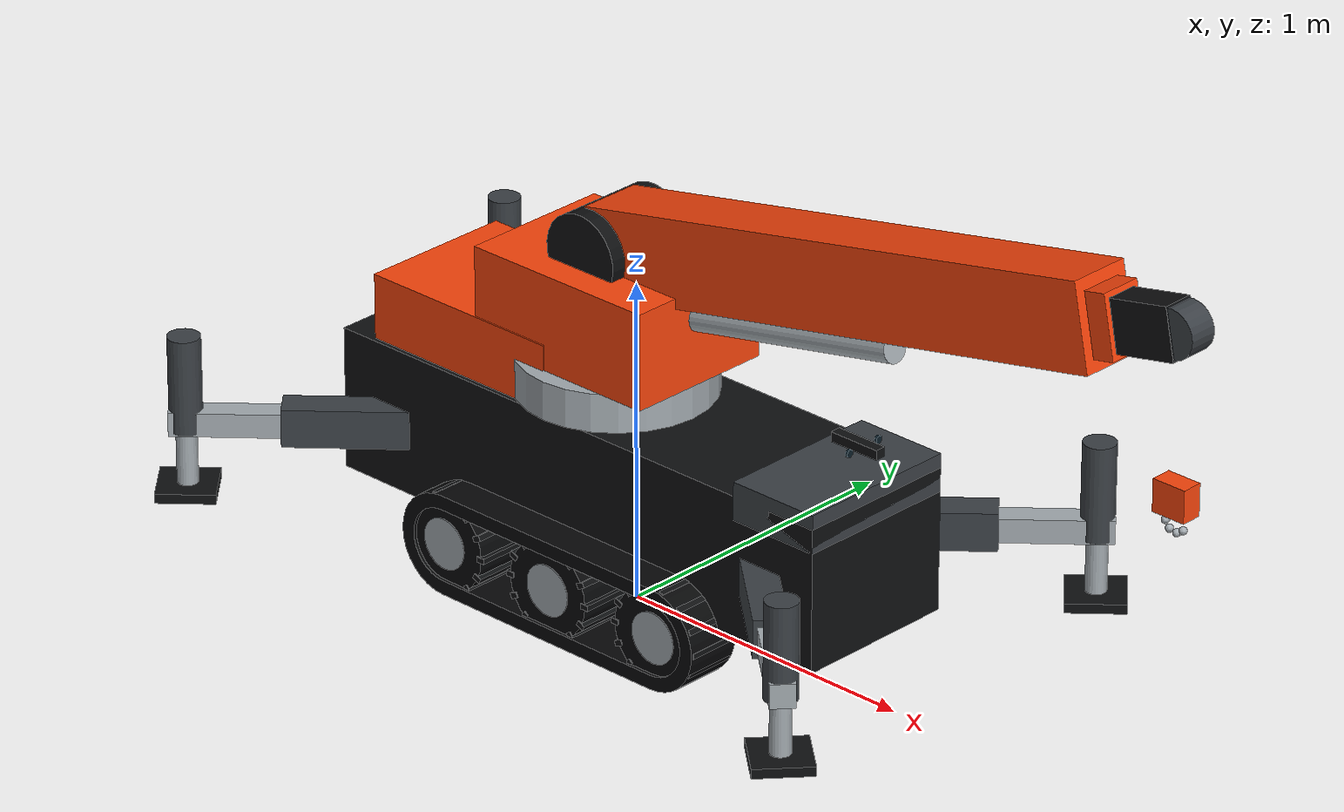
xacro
<?xml version="1.0" encoding="utf-8"?>
<robot name="jekko_01">
  <material name="black">
    <color rgba="0.055 0.06 0.065 1" />
  </material>
  <material name="rubber">
    <color rgba="0.025 0.028 0.032 1" />
  </material>
  <material name="grey">
    <color rgba="0.23 0.25 0.27 1" />
  </material>
  <material name="silver">
    <color rgba="0.64 0.67 0.69 1" />
  </material>
  <material name="white">
    <color rgba="0.86 0.88 0.89 1" />
  </material>
  <material name="orange">
    <color rgba="0.98 0.27 0.045 1" />
  </material>
  <material name="yellow">
    <color rgba="0.98 0.7 0.03 1" />
  </material>
  <material name="red">
    <color rgba="0.76 0.08 0.08 1" />
  </material>
  <material name="glass">
    <color rgba="0.04 0.11 0.15 1" />
  </material>
  <link name="jekko_base_link">
    <inertial>
      <origin xyz="0 0 0.42" rpy="0 0 0" />
      <mass value="1600" />
      <inertia ixx="64.45333333333333" iyy="483.3333333333334" izz="493.7866666666667" ixy="0" ixz="0" iyz="0" />
    </inertial>
    <visual>
      <origin xyz="0 0 0.42" rpy="0 0 0" />
      <geometry>
        <box size="1.85 0.53 0.45" />
      </geometry>
      <material name="black" />
    </visual>
    <collision>
      <origin xyz="0 0 0.42" rpy="0 0 0" />
      <geometry>
        <box size="1.85 0.53 0.45" />
      </geometry>
    </collision>
    <visual>
      <origin xyz="-0.47 0 0.72" rpy="0 0 0" />
      <geometry>
        <box size="0.68 0.5 0.26" />
      </geometry>
      <material name="orange" />
    </visual>
    <visual>
      <origin xyz="0.775 0 0.63" rpy="0 0 0" />
      <geometry>
        <box size="0.3 0.53 0.12" />
      </geometry>
      <material name="grey" />
    </visual>
    <visual>
      <origin xyz="0 0.29 0.16" rpy="0 0 0" />
      <geometry>
        <mesh filename="package://cask_robot_description/urdf/jekko_01_track.obj" scale="1 1 1" />
      </geometry>
      <material name="rubber" />
    </visual>
    <visual>
      <origin xyz="0 -0.29 0.16" rpy="0 0 0" />
      <geometry>
        <mesh filename="package://cask_robot_description/urdf/jekko_01_track.obj" scale="1 1 1" />
      </geometry>
      <material name="rubber" />
    </visual>
    <visual>
      <origin xyz="0.85 0 0.79" rpy="0 0 0" />
      <geometry>
        <box size="0.17 0.035 0.03" />
      </geometry>
      <material name="black" />
    </visual>
    <visual>
      <origin xyz="0.872 -0.06 0.79" rpy="0 1.570796 0" />
      <geometry>
        <cylinder radius="0.012" length="0.008" />
      </geometry>
      <material name="glass" />
    </visual>
    <visual>
      <origin xyz="0.872 0.06 0.79" rpy="0 1.570796 0" />
      <geometry>
        <cylinder radius="0.012" length="0.008" />
      </geometry>
      <material name="glass" />
    </visual>
  </link>
  <link name="jekko_left_roller_0_wheel_link">
    <inertial>
      <origin xyz="0 0 0" rpy="0 0 0" />
      <mass value="4" />
      <inertia ixx="0.037885440000000006" iyy="0.059043840000000014" izz="0.037885440000000006" ixy="0" ixz="0" iyz="0" />
    </inertial>
    <visual>
      <origin xyz="0 0 0" rpy="1.570796 0 0" />
      <geometry>
        <cylinder radius="0.14880000000000002" length="0.15839999999999999" />
      </geometry>
      <material name="rubber" />
    </visual>
    <collision>
      <origin xyz="0 0 0" rpy="0 0 0" />
      <geometry>
        <sphere radius="0.14880000000000002" />
      </geometry>
    </collision>
    <visual>
      <origin xyz="0 0 0" rpy="1.570796 0 0" />
      <geometry>
        <cylinder radius="0.08035200000000002" length="0.1624" />
      </geometry>
      <material name="silver" />
    </visual>
    <visual name="task005_merged_wheel_treads"><origin xyz="0 0 0" rpy="0 0 0" /><geometry><mesh filename="package://cask_robot_description/urdf/jekko_task005_wheel_treads_28ebab203028.obj" scale="1 1 1" /></geometry><material name="black" />
    </visual>

  </link>
  <joint name="jekko_left_roller_0_wheel_joint" type="continuous">
  <parent link="jekko_base_link" />
  <child link="jekko_left_roller_0_wheel_link" />
  <origin xyz="-0.415 0.29 0.16" rpy="0 0 0" />
  <axis xyz="0 1 0" />
  <limit effort="1800" velocity="28.0" />
  <dynamics damping="0.5" friction="0.02" />
</joint>
  <gazebo reference="jekko_left_roller_0_wheel_link">
  <mu1>0.05</mu1>
  <mu2>0.9</mu2>
  <fdir1>0 1 0</fdir1>
</gazebo>
  <link name="jekko_left_roller_2_wheel_link">
    <inertial>
      <origin xyz="0 0 0" rpy="0 0 0" />
      <mass value="4" />
      <inertia ixx="0.037885440000000006" iyy="0.059043840000000014" izz="0.037885440000000006" ixy="0" ixz="0" iyz="0" />
    </inertial>
    <visual>
      <origin xyz="0 0 0" rpy="1.570796 0 0" />
      <geometry>
        <cylinder radius="0.14880000000000002" length="0.15839999999999999" />
      </geometry>
      <material name="rubber" />
    </visual>
    <collision>
      <origin xyz="0 0 0" rpy="0 0 0" />
      <geometry>
        <sphere radius="0.14880000000000002" />
      </geometry>
    </collision>
    <visual>
      <origin xyz="0 0 0" rpy="1.570796 0 0" />
      <geometry>
        <cylinder radius="0.08035200000000002" length="0.1624" />
      </geometry>
      <material name="silver" />
    </visual>
    <visual name="task005_merged_wheel_treads"><origin xyz="0 0 0" rpy="0 0 0" /><geometry><mesh filename="package://cask_robot_description/urdf/jekko_task005_wheel_treads_28ebab203028.obj" scale="1 1 1" /></geometry><material name="black" />
    </visual>

  </link>
  <joint name="jekko_left_roller_2_wheel_joint" type="continuous">
  <parent link="jekko_base_link" />
  <child link="jekko_left_roller_2_wheel_link" />
  <origin xyz="0 0.29 0.16" rpy="0 0 0" />
  <axis xyz="0 1 0" />
  <limit effort="1800" velocity="28.0" />
  <dynamics damping="0.5" friction="0.02" />
</joint>
  <gazebo reference="jekko_left_roller_2_wheel_link">
  <mu1>0.05</mu1>
  <mu2>0.9</mu2>
  <fdir1>0 1 0</fdir1>
</gazebo>
  <link name="jekko_left_roller_4_wheel_link">
    <inertial>
      <origin xyz="0 0 0" rpy="0 0 0" />
      <mass value="4" />
      <inertia ixx="0.037885440000000006" iyy="0.059043840000000014" izz="0.037885440000000006" ixy="0" ixz="0" iyz="0" />
    </inertial>
    <visual>
      <origin xyz="0 0 0" rpy="1.570796 0 0" />
      <geometry>
        <cylinder radius="0.14880000000000002" length="0.15839999999999999" />
      </geometry>
      <material name="rubber" />
    </visual>
    <collision>
      <origin xyz="0 0 0" rpy="0 0 0" />
      <geometry>
        <sphere radius="0.14880000000000002" />
      </geometry>
    </collision>
    <visual>
      <origin xyz="0 0 0" rpy="1.570796 0 0" />
      <geometry>
        <cylinder radius="0.08035200000000002" length="0.1624" />
      </geometry>
      <material name="silver" />
    </visual>
    <visual name="task005_merged_wheel_treads"><origin xyz="0 0 0" rpy="0 0 0" /><geometry><mesh filename="package://cask_robot_description/urdf/jekko_task005_wheel_treads_28ebab203028.obj" scale="1 1 1" /></geometry><material name="black" />
    </visual>

  </link>
  <joint name="jekko_left_roller_4_wheel_joint" type="continuous">
  <parent link="jekko_base_link" />
  <child link="jekko_left_roller_4_wheel_link" />
  <origin xyz="0.415 0.29 0.16" rpy="0 0 0" />
  <axis xyz="0 1 0" />
  <limit effort="1800" velocity="28.0" />
  <dynamics damping="0.5" friction="0.02" />
</joint>
  <gazebo reference="jekko_left_roller_4_wheel_link">
  <mu1>0.05</mu1>
  <mu2>0.9</mu2>
  <fdir1>0 1 0</fdir1>
</gazebo>
  <link name="jekko_right_roller_0_wheel_link">
    <inertial>
      <origin xyz="0 0 0" rpy="0 0 0" />
      <mass value="4" />
      <inertia ixx="0.037885440000000006" iyy="0.059043840000000014" izz="0.037885440000000006" ixy="0" ixz="0" iyz="0" />
    </inertial>
    <visual>
      <origin xyz="0 0 0" rpy="1.570796 0 0" />
      <geometry>
        <cylinder radius="0.14880000000000002" length="0.15839999999999999" />
      </geometry>
      <material name="rubber" />
    </visual>
    <collision>
      <origin xyz="0 0 0" rpy="0 0 0" />
      <geometry>
        <sphere radius="0.14880000000000002" />
      </geometry>
    </collision>
    <visual>
      <origin xyz="0 0 0" rpy="1.570796 0 0" />
      <geometry>
        <cylinder radius="0.08035200000000002" length="0.1624" />
      </geometry>
      <material name="silver" />
    </visual>
    <visual name="task005_merged_wheel_treads"><origin xyz="0 0 0" rpy="0 0 0" /><geometry><mesh filename="package://cask_robot_description/urdf/jekko_task005_wheel_treads_28ebab203028.obj" scale="1 1 1" /></geometry><material name="black" />
    </visual>

  </link>
  <joint name="jekko_right_roller_0_wheel_joint" type="continuous">
  <parent link="jekko_base_link" />
  <child link="jekko_right_roller_0_wheel_link" />
  <origin xyz="-0.415 -0.29 0.16" rpy="0 0 0" />
  <axis xyz="0 1 0" />
  <limit effort="1800" velocity="28.0" />
  <dynamics damping="0.5" friction="0.02" />
</joint>
  <gazebo reference="jekko_right_roller_0_wheel_link">
  <mu1>0.05</mu1>
  <mu2>0.9</mu2>
  <fdir1>0 1 0</fdir1>
</gazebo>
  <link name="jekko_right_roller_2_wheel_link">
    <inertial>
      <origin xyz="0 0 0" rpy="0 0 0" />
      <mass value="4" />
      <inertia ixx="0.037885440000000006" iyy="0.059043840000000014" izz="0.037885440000000006" ixy="0" ixz="0" iyz="0" />
    </inertial>
    <visual>
      <origin xyz="0 0 0" rpy="1.570796 0 0" />
      <geometry>
        <cylinder radius="0.14880000000000002" length="0.15839999999999999" />
      </geometry>
      <material name="rubber" />
    </visual>
    <collision>
      <origin xyz="0 0 0" rpy="0 0 0" />
      <geometry>
        <sphere radius="0.14880000000000002" />
      </geometry>
    </collision>
    <visual>
      <origin xyz="0 0 0" rpy="1.570796 0 0" />
      <geometry>
        <cylinder radius="0.08035200000000002" length="0.1624" />
      </geometry>
      <material name="silver" />
    </visual>
    <visual name="task005_merged_wheel_treads"><origin xyz="0 0 0" rpy="0 0 0" /><geometry><mesh filename="package://cask_robot_description/urdf/jekko_task005_wheel_treads_28ebab203028.obj" scale="1 1 1" /></geometry><material name="black" />
    </visual>

  </link>
  <joint name="jekko_right_roller_2_wheel_joint" type="continuous">
  <parent link="jekko_base_link" />
  <child link="jekko_right_roller_2_wheel_link" />
  <origin xyz="0 -0.29 0.16" rpy="0 0 0" />
  <axis xyz="0 1 0" />
  <limit effort="1800" velocity="28.0" />
  <dynamics damping="0.5" friction="0.02" />
</joint>
  <gazebo reference="jekko_right_roller_2_wheel_link">
  <mu1>0.05</mu1>
  <mu2>0.9</mu2>
  <fdir1>0 1 0</fdir1>
</gazebo>
  <link name="jekko_right_roller_4_wheel_link">
    <inertial>
      <origin xyz="0 0 0" rpy="0 0 0" />
      <mass value="4" />
      <inertia ixx="0.037885440000000006" iyy="0.059043840000000014" izz="0.037885440000000006" ixy="0" ixz="0" iyz="0" />
    </inertial>
    <visual>
      <origin xyz="0 0 0" rpy="1.570796 0 0" />
      <geometry>
        <cylinder radius="0.14880000000000002" length="0.15839999999999999" />
      </geometry>
      <material name="rubber" />
    </visual>
    <collision>
      <origin xyz="0 0 0" rpy="0 0 0" />
      <geometry>
        <sphere radius="0.14880000000000002" />
      </geometry>
    </collision>
    <visual>
      <origin xyz="0 0 0" rpy="1.570796 0 0" />
      <geometry>
        <cylinder radius="0.08035200000000002" length="0.1624" />
      </geometry>
      <material name="silver" />
    </visual>
    <visual name="task005_merged_wheel_treads"><origin xyz="0 0 0" rpy="0 0 0" /><geometry><mesh filename="package://cask_robot_description/urdf/jekko_task005_wheel_treads_28ebab203028.obj" scale="1 1 1" /></geometry><material name="black" />
    </visual>

  </link>
  <joint name="jekko_right_roller_4_wheel_joint" type="continuous">
  <parent link="jekko_base_link" />
  <child link="jekko_right_roller_4_wheel_link" />
  <origin xyz="0.415 -0.29 0.16" rpy="0 0 0" />
  <axis xyz="0 1 0" />
  <limit effort="1800" velocity="28.0" />
  <dynamics damping="0.5" friction="0.02" />
</joint>
  <gazebo reference="jekko_right_roller_4_wheel_link">
  <mu1>0.05</mu1>
  <mu2>0.9</mu2>
  <fdir1>0 1 0</fdir1>
</gazebo>
  <gazebo>
    <plugin filename="ignition-gazebo-diff-drive-system" name="ignition::gazebo::systems::DiffDrive">
  <left_joint>jekko_left_roller_0_wheel_joint</left_joint>
  <left_joint>jekko_left_roller_2_wheel_joint</left_joint>
  <left_joint>jekko_left_roller_4_wheel_joint</left_joint>
  <right_joint>jekko_right_roller_0_wheel_joint</right_joint>
  <right_joint>jekko_right_roller_2_wheel_joint</right_joint>
  <right_joint>jekko_right_roller_4_wheel_joint</right_joint>
  <wheel_separation>0.58</wheel_separation>
  <wheel_radius>0.14880000000000002</wheel_radius>
  <topic>/jekko/cmd_vel</topic>
  <odom_topic>/jekko/odom</odom_topic>
  <tf_topic>/jekko/odom_tf</tf_topic>
  <frame_id>jekko_odom</frame_id>
  <child_frame_id>jekko_base_link</child_frame_id>
  <min_linear_velocity>-0.7</min_linear_velocity>
  <max_linear_velocity>0.7</max_linear_velocity>
  <min_angular_velocity>-1.1</min_angular_velocity>
  <max_angular_velocity>1.1</max_angular_velocity>
  <min_linear_acceleration>-1.6</min_linear_acceleration>
  <max_linear_acceleration>1.6</max_linear_acceleration>
  <odom_publish_frequency>30</odom_publish_frequency>
</plugin>
  </gazebo>
  <link name="jekko_front_left_support">
    <inertial>
      <origin xyz="0.215 0 0" rpy="0 0 0" />
      <mass value="20" />
      <inertia ixx="0.04066666666666667" iyy="0.33216666666666667" izz="0.3248333333333333" ixy="0" ixz="0" iyz="0" />
    </inertial>
    <visual>
      <origin xyz="0.215 0 0" rpy="0 0 0" />
      <geometry>
        <box size="0.43 0.1 0.12" />
      </geometry>
      <material name="grey" />
    </visual>
    <collision>
      <origin xyz="0.215 0 0" rpy="0 0 0" />
      <geometry>
        <box size="0.43 0.1 0.12" />
      </geometry>
    </collision>
  </link>
  <joint name="jekko_front_left_support_fixed" type="fixed">
    <parent link="jekko_base_link" />
    <child link="jekko_front_left_support" />
    <origin xyz="0.64 0.19 0.4" rpy="0 0 0.72" />
  </joint>
  <link name="jekko_front_left_extension">
    <inertial>
      <origin xyz="0.225 0 0" rpy="0 0 0" />
      <mass value="12" />
      <inertia ixx="0.011250000000000001" iyy="0.208125" izz="0.208125" ixy="0" ixz="0" iyz="0" />
    </inertial>
    <visual>
      <origin xyz="0.225 0 0" rpy="0 0 0" />
      <geometry>
        <box size="0.45 0.075 0.075" />
      </geometry>
      <material name="silver" />
    </visual>
    <collision>
      <origin xyz="0.225 0 0" rpy="0 0 0" />
      <geometry>
        <box size="0.45 0.075 0.075" />
      </geometry>
    </collision>
  <visual name="overlapping_inner_beam">
      <origin xyz="-0.45 0 0" rpy="0 0 0" />
      <geometry><box size="0.9 0.065 0.065" /></geometry><material name="silver" />
    </visual><visual name="vertical_leg_housing">
      <origin xyz="0.4 0 0.12" rpy="0 0 0" />
      <geometry><cylinder radius="0.05" length="0.30" /></geometry><material name="grey" />
    </visual></link>
  <joint name="jekko_front_left_extension_joint" type="prismatic">
  <parent link="jekko_front_left_support" />
  <child link="jekko_front_left_extension" />
  <origin xyz="0.31 0 0" rpy="0 0 0" />
  <axis xyz="1 0 0" />
  <limit effort="10000" velocity="0.21" lower="-0.005" upper="0.855" />
  <dynamics damping="0.5" friction="0.02" />
</joint>
  <gazebo>
    <plugin filename="ignition-gazebo-joint-position-controller-system" name="ignition::gazebo::systems::JointPositionController">
  <joint_name>jekko_front_left_extension_joint</joint_name>
  <topic>/jekko/front_left_extension_cmd</topic>
  <use_velocity_commands>true</use_velocity_commands>
  <p_gain>4</p_gain>
  <cmd_max>0.2</cmd_max>
  <cmd_min>-0.2</cmd_min>
  <initial_position>0</initial_position>
</plugin>
  </gazebo>
  <link name="jekko_front_left_foot">
    <inertial>
      <origin xyz="0 0 -0.11" rpy="0 0 0" />
      <mass value="8" />
      <inertia ixx="0.05686666666666667" iyy="0.05686666666666667" izz="0.043199999999999995" ixy="0" ixz="0" iyz="0" />
    </inertial>
    <visual>
      <origin xyz="0 0 0.025" rpy="0 0 0" />
      <geometry>
        <cylinder radius="0.032" length="0.45" />
      </geometry>
      <material name="silver" />
    </visual>
    <collision>
      <origin xyz="0 0 -0.1" rpy="0 0 0" />
      <geometry>
        <cylinder radius="0.032" length="0.2" />
      </geometry>
    </collision>
    <visual>
      <origin xyz="0 0 -0.215" rpy="0 0 0" />
      <geometry>
        <box size="0.18 0.18 0.03" />
      </geometry>
      <material name="black" />
    </visual>
    <collision>
      <origin xyz="0 0 -0.215" rpy="0 0 0" />
      <geometry>
        <box size="0.18 0.18 0.03" />
      </geometry>
    </collision>
  </link>
  <joint name="jekko_front_left_foot_joint" type="prismatic">
  <parent link="jekko_front_left_extension" />
  <child link="jekko_front_left_foot" />
  <origin xyz="0.4 0 0" rpy="0 0 0" />
  <axis xyz="0 0 -1" />
  <limit effort="15000" velocity="0.105" lower="-0.005" upper="0.225" />
  <dynamics damping="0.5" friction="0.02" />
</joint>
  <gazebo>
    <plugin filename="ignition-gazebo-joint-position-controller-system" name="ignition::gazebo::systems::JointPositionController">
  <joint_name>jekko_front_left_foot_joint</joint_name>
  <topic>/jekko/front_left_foot_cmd</topic>
  <use_velocity_commands>true</use_velocity_commands>
  <p_gain>4</p_gain>
  <cmd_max>0.1</cmd_max>
  <cmd_min>-0.1</cmd_min>
  <initial_position>0</initial_position>
</plugin>
  </gazebo>
  <link name="jekko_front_right_support">
    <inertial>
      <origin xyz="0.215 0 0" rpy="0 0 0" />
      <mass value="20" />
      <inertia ixx="0.04066666666666667" iyy="0.33216666666666667" izz="0.3248333333333333" ixy="0" ixz="0" iyz="0" />
    </inertial>
    <visual>
      <origin xyz="0.215 0 0" rpy="0 0 0" />
      <geometry>
        <box size="0.43 0.1 0.12" />
      </geometry>
      <material name="grey" />
    </visual>
    <collision>
      <origin xyz="0.215 0 0" rpy="0 0 0" />
      <geometry>
        <box size="0.43 0.1 0.12" />
      </geometry>
    </collision>
  </link>
  <joint name="jekko_front_right_support_fixed" type="fixed">
    <parent link="jekko_base_link" />
    <child link="jekko_front_right_support" />
    <origin xyz="0.64 -0.19 0.4" rpy="0 0 -0.72" />
  </joint>
  <link name="jekko_front_right_extension">
    <inertial>
      <origin xyz="0.225 0 0" rpy="0 0 0" />
      <mass value="12" />
      <inertia ixx="0.011250000000000001" iyy="0.208125" izz="0.208125" ixy="0" ixz="0" iyz="0" />
    </inertial>
    <visual>
      <origin xyz="0.225 0 0" rpy="0 0 0" />
      <geometry>
        <box size="0.45 0.075 0.075" />
      </geometry>
      <material name="silver" />
    </visual>
    <collision>
      <origin xyz="0.225 0 0" rpy="0 0 0" />
      <geometry>
        <box size="0.45 0.075 0.075" />
      </geometry>
    </collision>
  <visual name="overlapping_inner_beam">
      <origin xyz="-0.45 0 0" rpy="0 0 0" />
      <geometry><box size="0.9 0.065 0.065" /></geometry><material name="silver" />
    </visual><visual name="vertical_leg_housing">
      <origin xyz="0.4 0 0.12" rpy="0 0 0" />
      <geometry><cylinder radius="0.05" length="0.30" /></geometry><material name="grey" />
    </visual></link>
  <joint name="jekko_front_right_extension_joint" type="prismatic">
  <parent link="jekko_front_right_support" />
  <child link="jekko_front_right_extension" />
  <origin xyz="0.31 0 0" rpy="0 0 0" />
  <axis xyz="1 0 0" />
  <limit effort="10000" velocity="0.21" lower="-0.005" upper="0.855" />
  <dynamics damping="0.5" friction="0.02" />
</joint>
  <gazebo>
    <plugin filename="ignition-gazebo-joint-position-controller-system" name="ignition::gazebo::systems::JointPositionController">
  <joint_name>jekko_front_right_extension_joint</joint_name>
  <topic>/jekko/front_right_extension_cmd</topic>
  <use_velocity_commands>true</use_velocity_commands>
  <p_gain>4</p_gain>
  <cmd_max>0.2</cmd_max>
  <cmd_min>-0.2</cmd_min>
  <initial_position>0</initial_position>
</plugin>
  </gazebo>
  <link name="jekko_front_right_foot">
    <inertial>
      <origin xyz="0 0 -0.11" rpy="0 0 0" />
      <mass value="8" />
      <inertia ixx="0.05686666666666667" iyy="0.05686666666666667" izz="0.043199999999999995" ixy="0" ixz="0" iyz="0" />
    </inertial>
    <visual>
      <origin xyz="0 0 0.025" rpy="0 0 0" />
      <geometry>
        <cylinder radius="0.032" length="0.45" />
      </geometry>
      <material name="silver" />
    </visual>
    <collision>
      <origin xyz="0 0 -0.1" rpy="0 0 0" />
      <geometry>
        <cylinder radius="0.032" length="0.2" />
      </geometry>
    </collision>
    <visual>
      <origin xyz="0 0 -0.215" rpy="0 0 0" />
      <geometry>
        <box size="0.18 0.18 0.03" />
      </geometry>
      <material name="black" />
    </visual>
    <collision>
      <origin xyz="0 0 -0.215" rpy="0 0 0" />
      <geometry>
        <box size="0.18 0.18 0.03" />
      </geometry>
    </collision>
  </link>
  <joint name="jekko_front_right_foot_joint" type="prismatic">
  <parent link="jekko_front_right_extension" />
  <child link="jekko_front_right_foot" />
  <origin xyz="0.4 0 0" rpy="0 0 0" />
  <axis xyz="0 0 -1" />
  <limit effort="15000" velocity="0.105" lower="-0.005" upper="0.225" />
  <dynamics damping="0.5" friction="0.02" />
</joint>
  <gazebo>
    <plugin filename="ignition-gazebo-joint-position-controller-system" name="ignition::gazebo::systems::JointPositionController">
  <joint_name>jekko_front_right_foot_joint</joint_name>
  <topic>/jekko/front_right_foot_cmd</topic>
  <use_velocity_commands>true</use_velocity_commands>
  <p_gain>4</p_gain>
  <cmd_max>0.1</cmd_max>
  <cmd_min>-0.1</cmd_min>
  <initial_position>0</initial_position>
</plugin>
  </gazebo>
  <link name="jekko_rear_left_support">
    <inertial>
      <origin xyz="0.215 0 0" rpy="0 0 0" />
      <mass value="20" />
      <inertia ixx="0.04066666666666667" iyy="0.33216666666666667" izz="0.3248333333333333" ixy="0" ixz="0" iyz="0" />
    </inertial>
    <visual>
      <origin xyz="0.215 0 0" rpy="0 0 0" />
      <geometry>
        <box size="0.43 0.1 0.12" />
      </geometry>
      <material name="grey" />
    </visual>
    <collision>
      <origin xyz="0.215 0 0" rpy="0 0 0" />
      <geometry>
        <box size="0.43 0.1 0.12" />
      </geometry>
    </collision>
  </link>
  <joint name="jekko_rear_left_support_fixed" type="fixed">
    <parent link="jekko_base_link" />
    <child link="jekko_rear_left_support" />
    <origin xyz="-0.65 0.19 0.4" rpy="0 0 2.42" />
  </joint>
  <link name="jekko_rear_left_extension">
    <inertial>
      <origin xyz="0.225 0 0" rpy="0 0 0" />
      <mass value="12" />
      <inertia ixx="0.011250000000000001" iyy="0.208125" izz="0.208125" ixy="0" ixz="0" iyz="0" />
    </inertial>
    <visual>
      <origin xyz="0.225 0 0" rpy="0 0 0" />
      <geometry>
        <box size="0.45 0.075 0.075" />
      </geometry>
      <material name="silver" />
    </visual>
    <collision>
      <origin xyz="0.225 0 0" rpy="0 0 0" />
      <geometry>
        <box size="0.45 0.075 0.075" />
      </geometry>
    </collision>
  <visual name="overlapping_inner_beam">
      <origin xyz="-0.45 0 0" rpy="0 0 0" />
      <geometry><box size="0.9 0.065 0.065" /></geometry><material name="silver" />
    </visual><visual name="vertical_leg_housing">
      <origin xyz="0.4 0 0.12" rpy="0 0 0" />
      <geometry><cylinder radius="0.05" length="0.30" /></geometry><material name="grey" />
    </visual></link>
  <joint name="jekko_rear_left_extension_joint" type="prismatic">
  <parent link="jekko_rear_left_support" />
  <child link="jekko_rear_left_extension" />
  <origin xyz="0.31 0 0" rpy="0 0 0" />
  <axis xyz="1 0 0" />
  <limit effort="10000" velocity="0.21" lower="-0.005" upper="0.855" />
  <dynamics damping="0.5" friction="0.02" />
</joint>
  <gazebo>
    <plugin filename="ignition-gazebo-joint-position-controller-system" name="ignition::gazebo::systems::JointPositionController">
  <joint_name>jekko_rear_left_extension_joint</joint_name>
  <topic>/jekko/rear_left_extension_cmd</topic>
  <use_velocity_commands>true</use_velocity_commands>
  <p_gain>4</p_gain>
  <cmd_max>0.2</cmd_max>
  <cmd_min>-0.2</cmd_min>
  <initial_position>0</initial_position>
</plugin>
  </gazebo>
  <link name="jekko_rear_left_foot">
    <inertial>
      <origin xyz="0 0 -0.11" rpy="0 0 0" />
      <mass value="8" />
      <inertia ixx="0.05686666666666667" iyy="0.05686666666666667" izz="0.043199999999999995" ixy="0" ixz="0" iyz="0" />
    </inertial>
    <visual>
      <origin xyz="0 0 0.025" rpy="0 0 0" />
      <geometry>
        <cylinder radius="0.032" length="0.45" />
      </geometry>
      <material name="silver" />
    </visual>
    <collision>
      <origin xyz="0 0 -0.1" rpy="0 0 0" />
      <geometry>
        <cylinder radius="0.032" length="0.2" />
      </geometry>
    </collision>
    <visual>
      <origin xyz="0 0 -0.215" rpy="0 0 0" />
      <geometry>
        <box size="0.18 0.18 0.03" />
      </geometry>
      <material name="black" />
    </visual>
    <collision>
      <origin xyz="0 0 -0.215" rpy="0 0 0" />
      <geometry>
        <box size="0.18 0.18 0.03" />
      </geometry>
    </collision>
  </link>
  <joint name="jekko_rear_left_foot_joint" type="prismatic">
  <parent link="jekko_rear_left_extension" />
  <child link="jekko_rear_left_foot" />
  <origin xyz="0.4 0 0" rpy="0 0 0" />
  <axis xyz="0 0 -1" />
  <limit effort="15000" velocity="0.105" lower="-0.005" upper="0.225" />
  <dynamics damping="0.5" friction="0.02" />
</joint>
  <gazebo>
    <plugin filename="ignition-gazebo-joint-position-controller-system" name="ignition::gazebo::systems::JointPositionController">
  <joint_name>jekko_rear_left_foot_joint</joint_name>
  <topic>/jekko/rear_left_foot_cmd</topic>
  <use_velocity_commands>true</use_velocity_commands>
  <p_gain>4</p_gain>
  <cmd_max>0.1</cmd_max>
  <cmd_min>-0.1</cmd_min>
  <initial_position>0</initial_position>
</plugin>
  </gazebo>
  <link name="jekko_rear_right_support">
    <inertial>
      <origin xyz="0.215 0 0" rpy="0 0 0" />
      <mass value="20" />
      <inertia ixx="0.04066666666666667" iyy="0.33216666666666667" izz="0.3248333333333333" ixy="0" ixz="0" iyz="0" />
    </inertial>
    <visual>
      <origin xyz="0.215 0 0" rpy="0 0 0" />
      <geometry>
        <box size="0.43 0.1 0.12" />
      </geometry>
      <material name="grey" />
    </visual>
    <collision>
      <origin xyz="0.215 0 0" rpy="0 0 0" />
      <geometry>
        <box size="0.43 0.1 0.12" />
      </geometry>
    </collision>
  </link>
  <joint name="jekko_rear_right_support_fixed" type="fixed">
    <parent link="jekko_base_link" />
    <child link="jekko_rear_right_support" />
    <origin xyz="-0.65 -0.19 0.4" rpy="0 0 -2.42" />
  </joint>
  <link name="jekko_rear_right_extension">
    <inertial>
      <origin xyz="0.225 0 0" rpy="0 0 0" />
      <mass value="12" />
      <inertia ixx="0.011250000000000001" iyy="0.208125" izz="0.208125" ixy="0" ixz="0" iyz="0" />
    </inertial>
    <visual>
      <origin xyz="0.225 0 0" rpy="0 0 0" />
      <geometry>
        <box size="0.45 0.075 0.075" />
      </geometry>
      <material name="silver" />
    </visual>
    <collision>
      <origin xyz="0.225 0 0" rpy="0 0 0" />
      <geometry>
        <box size="0.45 0.075 0.075" />
      </geometry>
    </collision>
  <visual name="overlapping_inner_beam">
      <origin xyz="-0.45 0 0" rpy="0 0 0" />
      <geometry><box size="0.9 0.065 0.065" /></geometry><material name="silver" />
    </visual><visual name="vertical_leg_housing">
      <origin xyz="0.4 0 0.12" rpy="0 0 0" />
      <geometry><cylinder radius="0.05" length="0.30" /></geometry><material name="grey" />
    </visual></link>
  <joint name="jekko_rear_right_extension_joint" type="prismatic">
  <parent link="jekko_rear_right_support" />
  <child link="jekko_rear_right_extension" />
  <origin xyz="0.31 0 0" rpy="0 0 0" />
  <axis xyz="1 0 0" />
  <limit effort="10000" velocity="0.21" lower="-0.005" upper="0.855" />
  <dynamics damping="0.5" friction="0.02" />
</joint>
  <gazebo>
    <plugin filename="ignition-gazebo-joint-position-controller-system" name="ignition::gazebo::systems::JointPositionController">
  <joint_name>jekko_rear_right_extension_joint</joint_name>
  <topic>/jekko/rear_right_extension_cmd</topic>
  <use_velocity_commands>true</use_velocity_commands>
  <p_gain>4</p_gain>
  <cmd_max>0.2</cmd_max>
  <cmd_min>-0.2</cmd_min>
  <initial_position>0</initial_position>
</plugin>
  </gazebo>
  <link name="jekko_rear_right_foot">
    <inertial>
      <origin xyz="0 0 -0.11" rpy="0 0 0" />
      <mass value="8" />
      <inertia ixx="0.05686666666666667" iyy="0.05686666666666667" izz="0.043199999999999995" ixy="0" ixz="0" iyz="0" />
    </inertial>
    <visual>
      <origin xyz="0 0 0.025" rpy="0 0 0" />
      <geometry>
        <cylinder radius="0.032" length="0.45" />
      </geometry>
      <material name="silver" />
    </visual>
    <collision>
      <origin xyz="0 0 -0.1" rpy="0 0 0" />
      <geometry>
        <cylinder radius="0.032" length="0.2" />
      </geometry>
    </collision>
    <visual>
      <origin xyz="0 0 -0.215" rpy="0 0 0" />
      <geometry>
        <box size="0.18 0.18 0.03" />
      </geometry>
      <material name="black" />
    </visual>
    <collision>
      <origin xyz="0 0 -0.215" rpy="0 0 0" />
      <geometry>
        <box size="0.18 0.18 0.03" />
      </geometry>
    </collision>
  </link>
  <joint name="jekko_rear_right_foot_joint" type="prismatic">
  <parent link="jekko_rear_right_extension" />
  <child link="jekko_rear_right_foot" />
  <origin xyz="0.4 0 0" rpy="0 0 0" />
  <axis xyz="0 0 -1" />
  <limit effort="15000" velocity="0.105" lower="-0.005" upper="0.225" />
  <dynamics damping="0.5" friction="0.02" />
</joint>
  <gazebo>
    <plugin filename="ignition-gazebo-joint-position-controller-system" name="ignition::gazebo::systems::JointPositionController">
  <joint_name>jekko_rear_right_foot_joint</joint_name>
  <topic>/jekko/rear_right_foot_cmd</topic>
  <use_velocity_commands>true</use_velocity_commands>
  <p_gain>4</p_gain>
  <cmd_max>0.1</cmd_max>
  <cmd_min>-0.1</cmd_min>
  <initial_position>0</initial_position>
</plugin>
  </gazebo>
  <link name="jekko_slew_link">
    <inertial>
      <origin xyz="0 0 0.15" rpy="0 0 0" />
      <mass value="230" />
      <inertia ixx="8.281916666666667" iyy="9.851666666666667" izz="13.165583333333336" ixy="0" ixz="0" iyz="0" />
    </inertial>
    <visual>
      <origin xyz="0 0 0.02" rpy="0 0 0" />
      <geometry>
        <cylinder radius="0.3" length="0.12" />
      </geometry>
      <material name="silver" />
    </visual>
    <collision>
      <origin xyz="0 0 0.02" rpy="0 0 0" />
      <geometry>
        <cylinder radius="0.3" length="0.12" />
      </geometry>
    </collision>
    <visual>
      <origin xyz="0 0 0.23" rpy="0 0 0" />
      <geometry>
        <box size="0.65 0.49 0.3" />
      </geometry>
      <material name="orange" />
    </visual>
    <collision>
      <origin xyz="0 0 0.23" rpy="0 0 0" />
      <geometry>
        <box size="0.65 0.49 0.3" />
      </geometry>
    </collision>
  </link>
  <joint name="jekko_slew_joint" type="continuous">
  <parent link="jekko_base_link" />
  <child link="jekko_slew_link" />
  <origin xyz="-0.08 0 0.69" rpy="0 0 0" />
  <axis xyz="0 0 1" />
  <limit effort="20000" velocity="0.5" />
  <dynamics damping="0.5" friction="0.02" />
</joint>
  <gazebo>
    <plugin filename="ignition-gazebo-joint-position-controller-system" name="ignition::gazebo::systems::JointPositionController">
  <joint_name>jekko_slew_joint</joint_name>
  <topic>/jekko/slew_cmd</topic>
  <use_velocity_commands>true</use_velocity_commands>
  <p_gain>4</p_gain>
  <cmd_max>0.5</cmd_max>
  <cmd_min>-0.5</cmd_min>
  <initial_position>0</initial_position>
</plugin>
  </gazebo>
  <link name="jekko_boom_link">
    <inertial>
      <origin xyz="0.925 0 0" rpy="0 0 0" />
      <mass value="180" />
      <inertia ixx="1.6935000000000002" iyy="52.43100000000001" izz="51.93750000000001" ixy="0" ixz="0" iyz="0" />
    </inertial>
    <visual>
      <origin xyz="0.925 0 0" rpy="0 0 0" />
      <geometry>
        <box size="1.85 0.2 0.27" />
      </geometry>
      <material name="orange" />
    </visual>
    <collision>
      <origin xyz="0.925 0 0" rpy="0 0 0" />
      <geometry>
        <box size="1.85 0.2 0.27" />
      </geometry>
    </collision>
    <visual>
      <origin xyz="0 0 0" rpy="1.570796 0 0" />
      <geometry>
        <cylinder radius="0.13" length="0.3" />
      </geometry>
      <material name="black" />
    </visual>
    <visual>
      <origin xyz="0.57 0 -0.19" rpy="0 1.570796 0" />
      <geometry>
        <cylinder radius="0.045" length="0.95" />
      </geometry>
      <material name="silver" />
    </visual>
  </link>
  <joint name="jekko_boom_pitch_joint" type="revolute">
  <parent link="jekko_slew_link" />
  <child link="jekko_boom_link" />
  <origin xyz="0 0 0.42" rpy="0 -0.2 0" />
  <axis xyz="0 -1 0" />
  <limit effort="30000" velocity="0.36" lower="0" upper="1.19" />
  <dynamics damping="0.5" friction="0.02" />
</joint>
  <gazebo>
    <plugin filename="ignition-gazebo-joint-position-controller-system" name="ignition::gazebo::systems::JointPositionController">
  <joint_name>jekko_boom_pitch_joint</joint_name>
  <topic>/jekko/boom_pitch_cmd</topic>
  <use_velocity_commands>false</use_velocity_commands>
  <p_gain>160000</p_gain>
  <cmd_max>30000</cmd_max>
  <cmd_min>-30000</cmd_min>
  <initial_position>0</initial_position>
  <i_gain>80000</i_gain>
  <d_gain>20000</d_gain>
  <i_max>10000</i_max>
  <i_min>-10000</i_min>
  <cmd_offset>3500</cmd_offset>
</plugin>
  </gazebo>
  <link name="jekko_telescope_1_link">
    <inertial>
      <origin xyz="0.75 0 0" rpy="0 0 0" />
      <mass value="65" />
      <inertia ixx="0.37754166666666666" iyy="12.426374999999998" izz="12.326166666666666" ixy="0" ixz="0" iyz="0" />
    </inertial>
    <visual>
      <origin xyz="0.75 0 0" rpy="0 0 0" />
      <geometry>
        <box size="1.5 0.135 0.195" />
      </geometry>
      <material name="orange" />
    </visual>
    <collision>
      <origin xyz="0.75 0 0" rpy="0 0 0" />
      <geometry>
        <box size="1.5 0.135 0.195" />
      </geometry>
    </collision>
  </link>
  <joint name="jekko_telescope_1_joint" type="prismatic">
  <parent link="jekko_boom_link" />
  <child link="jekko_telescope_1_link" />
  <origin xyz="0.42 0 0" rpy="0 0 0" />
  <axis xyz="1 0 0" />
  <limit effort="15000" velocity="0.42" lower="-0.005" upper="1.155" />
  <dynamics damping="0.5" friction="0.02" />
</joint>
  <gazebo>
    <plugin filename="ignition-gazebo-joint-position-controller-system" name="ignition::gazebo::systems::JointPositionController">
  <joint_name>jekko_telescope_1_joint</joint_name>
  <topic>/jekko/telescope_1_cmd</topic>
  <use_velocity_commands>true</use_velocity_commands>
  <p_gain>4</p_gain>
  <cmd_max>0.4</cmd_max>
  <cmd_min>-0.4</cmd_min>
  <initial_position>0</initial_position>
</plugin>
  </gazebo>
  <link name="jekko_telescope_2_link">
    <inertial>
      <origin xyz="0.75 0 0" rpy="0 0 0" />
      <mass value="65" />
      <inertia ixx="0.09438541666666667" iyy="12.24721875" izz="12.222166666666668" ixy="0" ixz="0" iyz="0" />
    </inertial>
    <visual>
      <origin xyz="0.75 0 0" rpy="0 0 0" />
      <geometry>
        <box size="1.5 0.1 0.16" />
      </geometry>
      <material name="black" />
    </visual>
    <collision>
      <origin xyz="0.75 0 0" rpy="0 0 0" />
      <geometry>
        <box size="1.5 0.1 0.16" />
      </geometry>
    </collision>
  </link>
  <joint name="jekko_telescope_2_joint" type="prismatic">
  <parent link="jekko_telescope_1_link" />
  <child link="jekko_telescope_2_link" />
  <origin xyz="0.2 0 0" rpy="0 0 0" />
  <axis xyz="1 0 0" />
  <limit effort="15000" velocity="0.42" lower="-0.005" upper="1.155" />
  <dynamics damping="0.5" friction="0.02" />
</joint>
  <gazebo>
    <plugin filename="ignition-gazebo-joint-position-controller-system" name="ignition::gazebo::systems::JointPositionController">
  <joint_name>jekko_telescope_2_joint</joint_name>
  <topic>/jekko/telescope_2_cmd</topic>
  <use_velocity_commands>true</use_velocity_commands>
  <p_gain>4</p_gain>
  <cmd_max>0.4</cmd_max>
  <cmd_min>-0.4</cmd_min>
  <initial_position>0</initial_position>
</plugin>
  </gazebo>
  <link name="jekko_cable_head_link">
    <inertial>
      <origin xyz="0 0 0" rpy="0 0 0" />
      <mass value="8" />
      <inertia ixx="0.0192" iyy="0.0192" izz="0.0192" ixy="0" ixz="0" iyz="0" />
    </inertial>
    <visual>
      <origin xyz="0 0 0" rpy="1.570796 0 0" />
      <geometry>
        <cylinder radius="0.075" length="0.09" />
      </geometry>
      <material name="grey" />
    </visual>
  </link>
  <joint name="jekko_hook_level_joint" type="revolute">
  <parent link="jekko_telescope_2_link" />
  <child link="jekko_cable_head_link" />
  <origin xyz="1.5 0 0" rpy="0 0.2 0" />
  <axis xyz="0 1 0" />
  <limit effort="200" velocity="0.6" lower="-1.4" upper="1.4" />
  <dynamics damping="2.0" friction="0.02" />
</joint>
  <gazebo>
    <plugin filename="ignition-gazebo-joint-position-controller-system" name="ignition::gazebo::systems::JointPositionController">
  <joint_name>jekko_hook_level_joint</joint_name>
  <topic>/jekko/hook_level_cmd</topic>
  <use_velocity_commands>true</use_velocity_commands>
  <p_gain>8</p_gain>
  <cmd_max>0.6</cmd_max>
  <cmd_min>-0.6</cmd_min>
  <initial_position>0</initial_position>
</plugin>
  </gazebo>
  <link name="jekko_hook_link">
    <inertial>
      <origin xyz="0 0 -0.27" rpy="0 0 0" />
      <mass value="7" />
      <inertia ixx="0.21373333333333333" iyy="0.21985833333333335" izz="0.013591666666666669" ixy="0" ixz="0" iyz="0" />
    </inertial>
    <visual>
      <origin xyz="0 0 -0.5" rpy="0 0 0" />
      <geometry>
        <box size="0.11 0.065 0.1" />
      </geometry>
      <material name="orange" />
    </visual>
    <collision>
      <origin xyz="0 0 -0.5" rpy="0 0 0" />
      <geometry>
        <box size="0.11 0.065 0.1" />
      </geometry>
    </collision>
    <visual>
      <origin xyz="0.01588967 0 -0.5388148" rpy="0 0 0" />
      <geometry>
        <sphere radius="0.012" />
      </geometry>
      <material name="silver" />
    </visual>
    <visual>
      <origin xyz="-0.009940537 0 -0.5364413" rpy="0 0 0" />
      <geometry>
        <sphere radius="0.012" />
      </geometry>
      <material name="silver" />
    </visual>
    <visual>
      <origin xyz="-0.03031089 0 -0.5525" rpy="0 0 0" />
      <geometry>
        <sphere radius="0.012" />
      </geometry>
      <material name="silver" />
    </visual>
    <visual>
      <origin xyz="-0.03403295 0 -0.5781706" rpy="0 0 0" />
      <geometry>
        <sphere radius="0.012" />
      </geometry>
      <material name="silver" />
    </visual>
    <visual>
      <origin xyz="-0.01906237 0 -0.5993535" rpy="0 0 0" />
      <geometry>
        <sphere radius="0.012" />
      </geometry>
      <material name="silver" />
    </visual>
    <visual>
      <origin xyz="0.006378243 0 -0.6044139" rpy="0 0 0" />
      <geometry>
        <sphere radius="0.012" />
      </geometry>
      <material name="silver" />
    </visual>
    <visual>
      <origin xyz="0.02831559 0 -0.5905725" rpy="0 0 0" />
      <geometry>
        <sphere radius="0.012" />
      </geometry>
      <material name="silver" />
    </visual>
  </link>
  <joint name="jekko_hoist_joint" type="prismatic">
  <parent link="jekko_cable_head_link" />
  <child link="jekko_hook_link" />
  <origin xyz="0 0 0" rpy="0 0 0" />
  <axis xyz="0 0 -1" />
  <limit effort="10000" velocity="0.42" lower="-0.005" upper="3.005" />
  <dynamics damping="0.5" friction="0.02" />
</joint>
  <gazebo>
    <plugin filename="ignition-gazebo-joint-position-controller-system" name="ignition::gazebo::systems::JointPositionController">
  <joint_name>jekko_hoist_joint</joint_name>
  <topic>/jekko/hoist_cmd</topic>
  <use_velocity_commands>true</use_velocity_commands>
  <p_gain>4</p_gain>
  <cmd_max>0.4</cmd_max>
  <cmd_min>-0.4</cmd_min>
  <initial_position>0</initial_position>
</plugin>
  </gazebo>
  <link name="jekko_cargo_attachment_link">
    <inertial>
      <origin xyz="0 0 0" rpy="0 0 0" />
      <mass value="0.02" />
      <inertia ixx="3.333333333333334e-07" iyy="3.333333333333334e-07" izz="3.333333333333334e-07" ixy="0" ixz="0" iyz="0" />
    </inertial>
  </link>
  <joint name="jekko_hook_yaw_joint" type="continuous">
  <parent link="jekko_hook_link" />
  <child link="jekko_cargo_attachment_link" />
  <origin xyz="0 0 -0.58" rpy="0 0 0" />
  <axis xyz="0 0 1" />
  <limit effort="500" velocity="0.5" />
  <dynamics damping=".5" friction=".02" />
</joint>
  <gazebo>
    <plugin filename="ignition-gazebo-joint-state-publisher-system" name="ignition::gazebo::systems::JointStatePublisher">
  <topic>/jekko/joint_states</topic>
  <update_rate>50</update_rate>
</plugin>
  </gazebo>
  <gazebo>
    <plugin filename="ignition-gazebo-pose-publisher-system" name="ignition::gazebo::systems::PosePublisher">
      <publish_link_pose>false</publish_link_pose>
      <publish_sensor_pose>false</publish_sensor_pose>
      <publish_collision_pose>false</publish_collision_pose>
      <publish_visual_pose>false</publish_visual_pose>
      <publish_nested_model_pose>true</publish_nested_model_pose>
      <use_pose_vector_msg>true</use_pose_vector_msg>
      <update_frequency>30</update_frequency>
      <publish_model_pose>true</publish_model_pose>
    </plugin>
  </gazebo>
  <gazebo>
    <plugin filename="ignition-gazebo-joint-position-controller-system" name="ignition::gazebo::systems::JointPositionController">
  <joint_name>jekko_hook_yaw_joint</joint_name>
  <topic>/jekko/hook_yaw_cmd</topic>
  <use_velocity_commands>true</use_velocity_commands>
  <p_gain>4</p_gain>
  <cmd_max>0.5</cmd_max>
  <cmd_min>-0.5</cmd_min>
  <initial_position>0</initial_position>
</plugin>
  </gazebo>
  <!-- CASK_TASK005_SOUTH_SPEED_V1 -->
</robot>

<!-- CASK_JEKKO_PRISMATIC_LIMIT_BUFFER_V1: nominal commanded ranges unchanged. -->

<!-- CASK_JEKKO_CONNECTED_VISUALS_V1: moving rods overlap housings; wire follows measurements. -->
